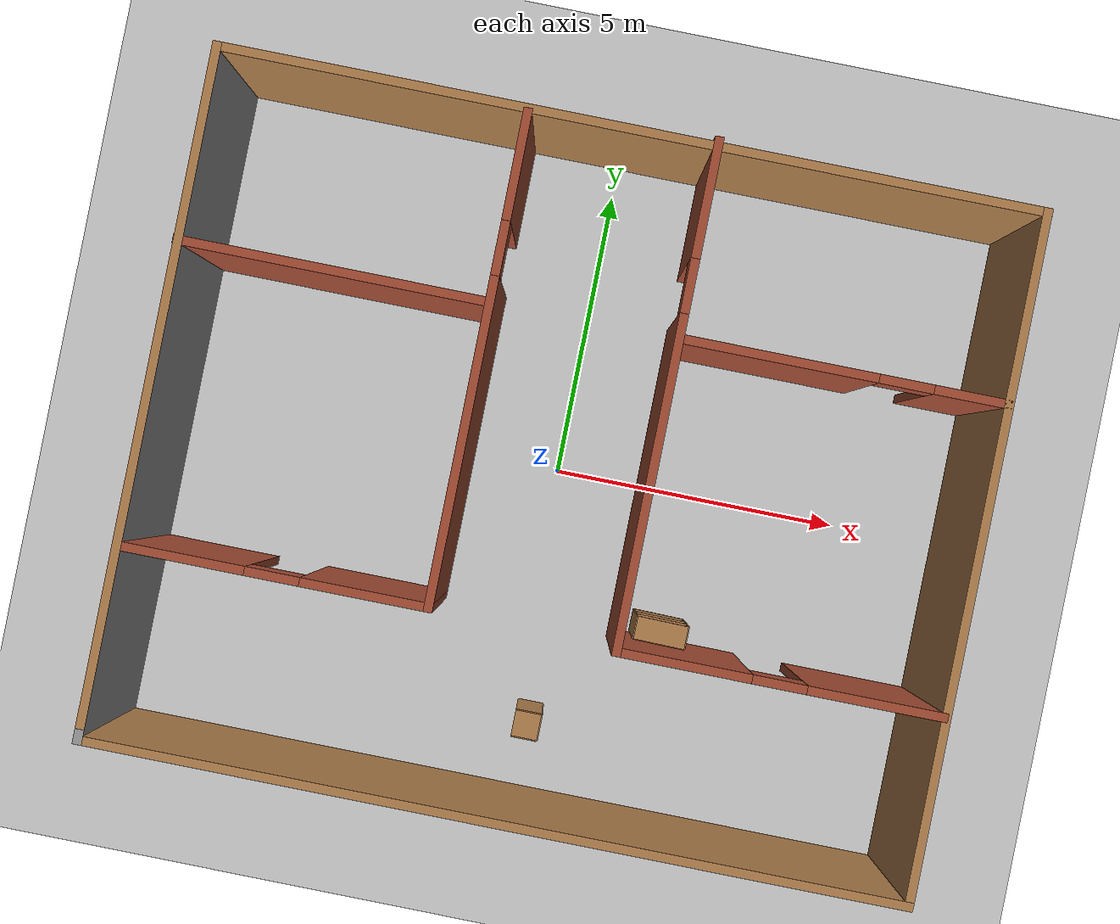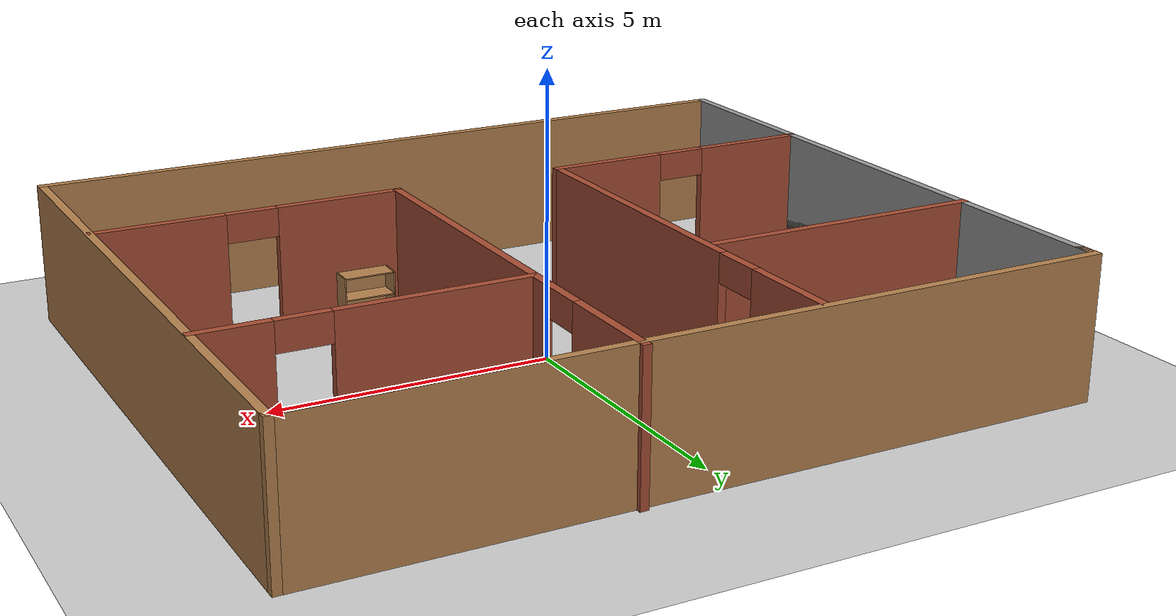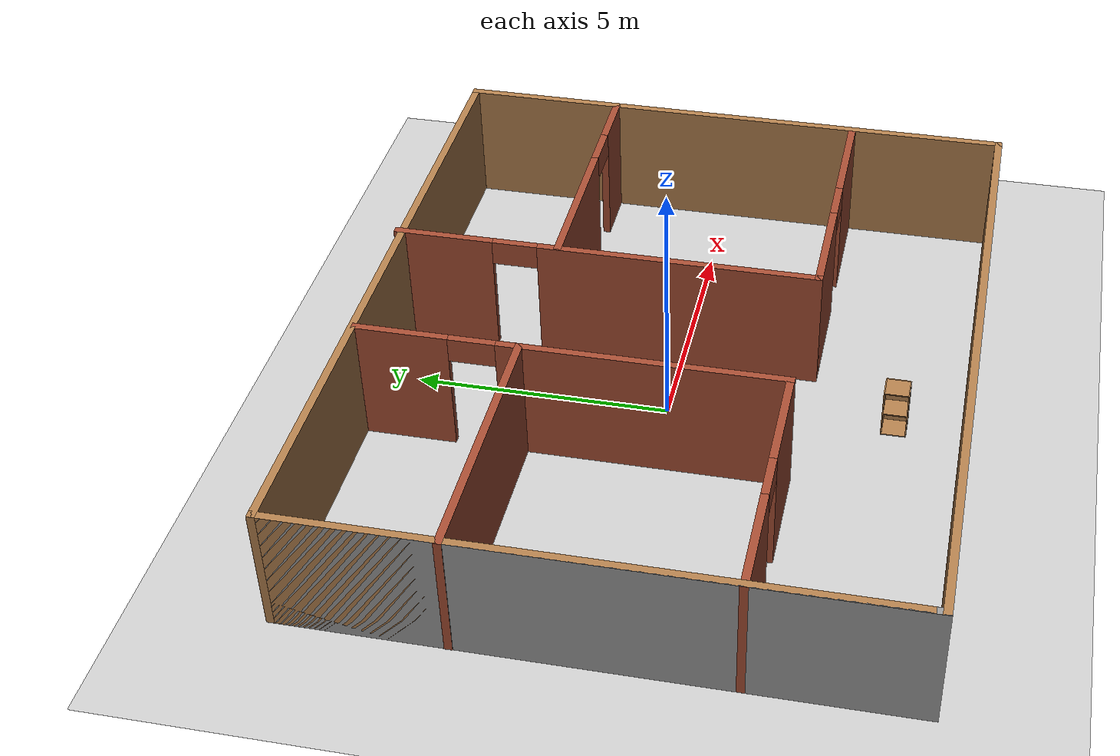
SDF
<sdf version="1.7">
 <world name="default">
  <light name="sun" type="directional">
   <pose>0 0 10 0 -0 0</pose>
   <diffuse>0.8 0.8 0.8 1</diffuse>
   <specular>0.2 0.2 0.2 1</specular>
   <attenuation>
    <range>1000</range>
    <constant>0.9</constant>
    <linear>0.01</linear>
    <quadratic>0.001</quadratic>
   </attenuation>
   <direction>-0.5 0.1 -0.9</direction>
   <spot><inner_angle>0</inner_angle><outer_angle>0</outer_angle><falloff>0</falloff></spot>
  </light>
  <model name="ground_plane">
   <static>1</static>
   <link name="link">
    <collision name="collision">
     <geometry><plane><normal>0 0 1</normal><size>100 100</size></plane></geometry>
     <surface>
      <contact><collide_bitmask>65535</collide_bitmask></contact>
      <friction><ode><mu>100</mu><mu2>50</mu2></ode></friction>
     </surface>
    </collision>
    <visual name="visual">
     <cast_shadows>0</cast_shadows>
     <geometry><plane><normal>0 0 1</normal><size>100 100</size></plane></geometry>
     <material>
      <script><uri>file://media/materials/scripts/gazebo.material</uri><name>Gazebo/Grey</name></script>
     </material>
    </visual>
   </link>
  </model>
  <gravity>0 0 -9.8</gravity>
  <magnetic_field>6e-06 2.3e-05 -4.2e-05</magnetic_field>
  <atmosphere type="adiabatic"/>
  <physics type="ode">
   <max_step_size>0.001</max_step_size>
   <real_time_factor>1</real_time_factor>
   <real_time_update_rate>1000</real_time_update_rate>
  </physics>
  <scene><ambient>0.4 0.4 0.4 1</ambient><background>0.7 0.7 0.7 1</background><shadows>1</shadows></scene>
  <audio><device>default</device></audio>
  <spherical_coordinates>
   <surface_model>EARTH_WGS84</surface_model>
   <latitude_deg>0</latitude_deg>
   <longitude_deg>0</longitude_deg>
   <elevation>0</elevation>
   <heading_deg>0</heading_deg>
  </spherical_coordinates>
  <model name="my_florr">
   <pose>0.106245 -0.028154 0 0 -0 0</pose>
   <link name="Wall_0">
    <collision name="Wall_0_Collision">
     <geometry><box><size>11.25 0.15 2.5</size></box></geometry>
     <pose>0 0 1.25 0 -0 0</pose>
    </collision>
    <visual name="Wall_0_Visual">
     <pose>0 0 1.25 0 -0 0</pose>
     <geometry><box><size>11.25 0.15 2.5</size></box></geometry>
     <material>
      <script><uri>file://media/materials/scripts/gazebo.material</uri><name>Gazebo/Wood</name></script>
      <ambient>1 1 1 1</ambient>
     </material>
     <meta><layer>0</layer></meta>
    </visual>
    <pose>-6.79479 0.08263 0 0 -0 -1.5708</pose>
   </link>
   <link name="Wall_12">
    <pose>-1.69508 1.51528 0 0 -0 -1.5708</pose>
    <visual name="Wall_12_Visual_0">
     <pose>-3.20481 0 1.25 0 -0 0</pose>
     <geometry><box><size>1.84037 0.15 2.5</size></box></geometry>
     <material>
      <script><uri>file://media/materials/scripts/gazebo.material</uri><name>Gazebo/Bricks</name></script>
      <ambient>1 1 1 1</ambient>
     </material>
     <meta><layer>0</layer></meta>
    </visual>
    <collision name="Wall_12_Collision_0">
     <geometry><box><size>1.84037 0.15 2.5</size></box></geometry>
     <pose>-3.20481 0 1.25 0 -0 0</pose>
    </collision>
    <visual name="Wall_12_Visual_1">
     <pose>1.37018 0 1.25 0 -0 0</pose>
     <geometry><box><size>5.50963 0.15 2.5</size></box></geometry>
     <material>
      <script><uri>file://media/materials/scripts/gazebo.material</uri><name>Gazebo/Bricks</name></script>
      <ambient>1 1 1 1</ambient>
     </material>
     <meta><layer>0</layer></meta>
    </visual>
    <collision name="Wall_12_Collision_1">
     <geometry><box><size>5.50963 0.15 2.5</size></box></geometry>
     <pose>1.37018 0 1.25 0 -0 0</pose>
    </collision>
    <visual name="Wall_12_Visual_2">
     <pose>-1.83463 0 2.25 0 -0 0</pose>
     <geometry><box><size>0.9 0.15 0.5</size></box></geometry>
     <material>
      <script><uri>file://media/materials/scripts/gazebo.material</uri><name>Gazebo/Bricks</name></script>
      <ambient>1 1 1 1</ambient>
     </material>
     <meta><layer>0</layer></meta>
    </visual>
    <collision name="Wall_12_Collision_2">
     <geometry><box><size>0.9 0.15 0.5</size></box></geometry>
     <pose>-1.83463 0 2.25 0 -0 0</pose>
    </collision>
   </link>
   <link name="Wall_13">
    <pose>-4.24507 -2.53472 0 0 -0 3.14159</pose>
    <visual name="Wall_13_Visual_0">
     <pose>-1.5298 0 1.25 0 -0 0</pose>
     <geometry><box><size>2.19039 0.15 2.5</size></box></geometry>
     <material>
      <script><uri>file://media/materials/scripts/gazebo.material</uri><name>Gazebo/Bricks</name></script>
      <ambient>1 1 1 1</ambient>
     </material>
     <meta><layer>0</layer></meta>
    </visual>
    <collision name="Wall_13_Collision_0">
     <geometry><box><size>2.19039 0.15 2.5</size></box></geometry>
     <pose>-1.5298 0 1.25 0 -0 0</pose>
    </collision>
    <visual name="Wall_13_Visual_1">
     <pose>1.5452 0 1.25 0 -0 0</pose>
     <geometry><box><size>2.15961 0.15 2.5</size></box></geometry>
     <material>
      <script><uri>file://media/materials/scripts/gazebo.material</uri><name>Gazebo/Bricks</name></script>
      <ambient>1 1 1 1</ambient>
     </material>
     <meta><layer>0</layer></meta>
    </visual>
    <collision name="Wall_13_Collision_1">
     <geometry><box><size>2.15961 0.15 2.5</size></box></geometry>
     <pose>1.5452 0 1.25 0 -0 0</pose>
    </collision>
    <visual name="Wall_13_Visual_2">
     <pose>0.015391 0 2.25 0 -0 0</pose>
     <geometry><box><size>0.9 0.15 0.5</size></box></geometry>
     <material>
      <script><uri>file://media/materials/scripts/gazebo.material</uri><name>Gazebo/Bricks</name></script>
      <ambient>1 1 1 1</ambient>
     </material>
     <meta><layer>0</layer></meta>
    </visual>
    <collision name="Wall_13_Collision_2">
     <geometry><box><size>0.9 0.15 0.5</size></box></geometry>
     <pose>0.015391 0 2.25 0 -0 0</pose>
    </collision>
   </link>
   <link name="Wall_15">
    <collision name="Wall_15_Collision">
     <geometry><box><size>5.25 0.15 2.5</size></box></geometry>
     <pose>0 0 1.25 0 -0 0</pose>
    </collision>
    <visual name="Wall_15_Visual">
     <pose>0 0 1.25 0 -0 0</pose>
     <geometry><box><size>5.25 0.15 2.5</size></box></geometry>
     <material>
      <script><uri>file://media/materials/scripts/gazebo.material</uri><name>Gazebo/Bricks</name></script>
      <ambient>1 1 1 1</ambient>
     </material>
     <meta><layer>0</layer></meta>
    </visual>
    <pose>-4.25521 2.4627 0 0 -0 0</pose>
   </link>
   <link name="Wall_17">
    <pose>1.40751 1.54237 0 0 -0 -1.5708</pose>
    <visual name="Wall_17_Visual_0">
     <pose>-3.25377 0 1.25 0 -0 0</pose>
     <geometry><box><size>1.99246 0.15 2.5</size></box></geometry>
     <material>
      <script><uri>file://media/materials/scripts/gazebo.material</uri><name>Gazebo/Bricks</name></script>
      <ambient>1 1 1 1</ambient>
     </material>
     <meta><layer>0</layer></meta>
    </visual>
    <collision name="Wall_17_Collision_0">
     <geometry><box><size>1.99246 0.15 2.5</size></box></geometry>
     <pose>-3.25377 0 1.25 0 -0 0</pose>
    </collision>
    <visual name="Wall_17_Visual_1">
     <pose>1.44623 0 1.25 0 -0 0</pose>
     <geometry><box><size>5.60754 0.15 2.5</size></box></geometry>
     <material>
      <script><uri>file://media/materials/scripts/gazebo.material</uri><name>Gazebo/Bricks</name></script>
      <ambient>1 1 1 1</ambient>
     </material>
     <meta><layer>0</layer></meta>
    </visual>
    <collision name="Wall_17_Collision_1">
     <geometry><box><size>5.60754 0.15 2.5</size></box></geometry>
     <pose>1.44623 0 1.25 0 -0 0</pose>
    </collision>
    <visual name="Wall_17_Visual_2">
     <pose>-1.80754 0 2.25 0 -0 0</pose>
     <geometry><box><size>0.9 0.15 0.5</size></box></geometry>
     <material>
      <script><uri>file://media/materials/scripts/gazebo.material</uri><name>Gazebo/Bricks</name></script>
      <ambient>1 1 1 1</ambient>
     </material>
     <meta><layer>0</layer></meta>
    </visual>
    <collision name="Wall_17_Collision_2">
     <geometry><box><size>0.9 0.15 0.5</size></box></geometry>
     <pose>-1.80754 0 2.25 0 -0 0</pose>
    </collision>
   </link>
   <link name="Wall_18">
    <pose>4.08251 -2.63263 0 0 -0 0</pose>
    <visual name="Wall_18_Visual_0">
     <pose>-1.60284 0 1.25 0 -0 0</pose>
     <geometry><box><size>2.29433 0.15 2.5</size></box></geometry>
     <material>
      <script><uri>file://media/materials/scripts/gazebo.material</uri><name>Gazebo/Bricks</name></script>
      <ambient>1 1 1 1</ambient>
     </material>
     <meta><layer>0</layer></meta>
    </visual>
    <collision name="Wall_18_Collision_0">
     <geometry><box><size>2.29433 0.15 2.5</size></box></geometry>
     <pose>-1.60284 0 1.25 0 -0 0</pose>
    </collision>
    <visual name="Wall_18_Visual_1">
     <pose>1.59716 0 1.25 0 -0 0</pose>
     <geometry><box><size>2.30567 0.15 2.5</size></box></geometry>
     <material>
      <script><uri>file://media/materials/scripts/gazebo.material</uri><name>Gazebo/Bricks</name></script>
      <ambient>1 1 1 1</ambient>
     </material>
     <meta><layer>0</layer></meta>
    </visual>
    <collision name="Wall_18_Collision_1">
     <geometry><box><size>2.30567 0.15 2.5</size></box></geometry>
     <pose>1.59716 0 1.25 0 -0 0</pose>
    </collision>
    <visual name="Wall_18_Visual_2">
     <pose>-0.005671 0 2.25 0 -0 0</pose>
     <geometry><box><size>0.9 0.15 0.5</size></box></geometry>
     <material>
      <script><uri>file://media/materials/scripts/gazebo.material</uri><name>Gazebo/Bricks</name></script>
      <ambient>1 1 1 1</ambient>
     </material>
     <meta><layer>0</layer></meta>
    </visual>
    <collision name="Wall_18_Collision_2">
     <geometry><box><size>0.9 0.15 0.5</size></box></geometry>
     <pose>-0.005671 0 2.25 0 -0 0</pose>
    </collision>
   </link>
   <link name="Wall_2">
    <collision name="Wall_2_Collision">
     <geometry><box><size>11.5 0.15 2.5</size></box></geometry>
     <pose>0 0 1.25 0 -0 0</pose>
    </collision>
    <visual name="Wall_2_Visual">
     <pose>0 0 1.25 0 -0 0</pose>
     <geometry><box><size>11.5 0.15 2.5</size></box></geometry>
     <material>
      <script><uri>file://media/materials/scripts/gazebo.material</uri><name>Gazebo/Grey</name></script>
      <ambient>1 1 1 1</ambient>
     </material>
     <meta><layer>0</layer></meta>
    </visual>
    <pose>-6.79479 -0.04237 0 0 -0 -1.5708</pose>
   </link>
   <link name="Wall_20">
    <pose>4.11293 2.49311 0 0 -0 0</pose>
    <visual name="Wall_20_Visual_0">
     <pose>-1.09203 0 1.25 0 -0 0</pose>
     <geometry><box><size>3.31594 0.15 2.5</size></box></geometry>
     <material>
      <script><uri>file://media/materials/scripts/gazebo.material</uri><name>Gazebo/Bricks</name></script>
      <ambient>1 1 1 1</ambient>
     </material>
     <meta><layer>0</layer></meta>
    </visual>
    <collision name="Wall_20_Collision_0">
     <geometry><box><size>3.31594 0.15 2.5</size></box></geometry>
     <pose>-1.09203 0 1.25 0 -0 0</pose>
    </collision>
    <visual name="Wall_20_Visual_1">
     <pose>2.10797 0 1.25 0 -0 0</pose>
     <geometry><box><size>1.28406 0.15 2.5</size></box></geometry>
     <material>
      <script><uri>file://media/materials/scripts/gazebo.material</uri><name>Gazebo/Bricks</name></script>
      <ambient>1 1 1 1</ambient>
     </material>
     <meta><layer>0</layer></meta>
    </visual>
    <collision name="Wall_20_Collision_1">
     <geometry><box><size>1.28406 0.15 2.5</size></box></geometry>
     <pose>2.10797 0 1.25 0 -0 0</pose>
    </collision>
    <visual name="Wall_20_Visual_2">
     <pose>1.01594 0 2.25 0 -0 0</pose>
     <geometry><box><size>0.9 0.15 0.5</size></box></geometry>
     <material>
      <script><uri>file://media/materials/scripts/gazebo.material</uri><name>Gazebo/Bricks</name></script>
      <ambient>1 1 1 1</ambient>
     </material>
     <meta><layer>0</layer></meta>
    </visual>
    <collision name="Wall_20_Collision_2">
     <geometry><box><size>0.9 0.15 0.5</size></box></geometry>
     <pose>1.01594 0 2.25 0 -0 0</pose>
    </collision>
   </link>
   <link name="Wall_3">
    <collision name="Wall_3_Collision">
     <geometry><box><size>13.75 0.15 2.5</size></box></geometry>
     <pose>0 0 1.25 0 -0 0</pose>
    </collision>
    <visual name="Wall_3_Visual">
     <pose>0 0 1.25 0 -0 0</pose>
     <geometry><box><size>13.75 0.15 2.5</size></box></geometry>
     <material>
      <script><uri>file://media/materials/scripts/gazebo.material</uri><name>Gazebo/Wood</name></script>
      <ambient>1 1 1 1</ambient>
     </material>
     <meta><layer>0</layer></meta>
    </visual>
    <pose>0.005214 -5.71737 0 0 -0 0</pose>
   </link>
   <link name="Wall_4">
    <collision name="Wall_4_Collision">
     <geometry><box><size>11.5 0.15 2.5</size></box></geometry>
     <pose>0 0 1.25 0 -0 0</pose>
    </collision>
    <visual name="Wall_4_Visual">
     <pose>0 0 1.25 0 -0 0</pose>
     <geometry><box><size>11.5 0.15 2.5</size></box></geometry>
     <material>
      <script><uri>file://media/materials/scripts/gazebo.material</uri><name>Gazebo/Wood</name></script>
      <ambient>1 1 1 1</ambient>
     </material>
     <meta><layer>0</layer></meta>
    </visual>
    <pose>6.80521 -0.04237 0 0 -0 1.5708</pose>
   </link>
   <link name="Wall_5">
    <collision name="Wall_5_Collision">
     <geometry><box><size>13.75 0.15 2.5</size></box></geometry>
     <pose>0 0 1.25 0 -0 0</pose>
    </collision>
    <visual name="Wall_5_Visual">
     <pose>0 0 1.25 0 -0 0</pose>
     <geometry><box><size>13.75 0.15 2.5</size></box></geometry>
     <material>
      <script><uri>file://media/materials/scripts/gazebo.material</uri><name>Gazebo/Wood</name></script>
      <ambient>1 1 1 1</ambient>
     </material>
     <meta><layer>0</layer></meta>
    </visual>
    <pose>0.005214 5.63263 0 0 -0 3.14159</pose>
   </link>
   <static>1</static>
  </model>
  <model name="bookshelf">
   <static>1</static>
   <link name="link">
    <inertial><mass>1</mass></inertial>
    <collision name="back">
     <pose>0 0.005 0.6 0 -0 0</pose>
     <geometry><box><size>0.9 0.01 1.2</size></box></geometry>
    </collision>
    <visual name="visual1">
     <pose>0 0.005 0.6 0 -0 0</pose>
     <geometry><box><size>0.9 0.01 1.2</size></box></geometry>
     <material>
      <script><uri>file://media/materials/scripts/gazebo.material</uri><name>Gazebo/Wood</name></script>
     </material>
    </visual>
    <collision name="left_side">
     <pose>0.45 -0.195 0.6 0 -0 0</pose>
     <geometry><box><size>0.02 0.4 1.2</size></box></geometry>
    </collision>
    <visual name="visual2">
     <pose>0.45 -0.195 0.6 0 -0 0</pose>
     <geometry><box><size>0.02 0.4 1.2</size></box></geometry>
     <material>
      <script><uri>file://media/materials/scripts/gazebo.material</uri><name>Gazebo/Wood</name></script>
     </material>
    </visual>
    <collision name="right_side">
     <pose>-0.45 -0.195 0.6 0 -0 0</pose>
     <geometry><box><size>0.02 0.4 1.2</size></box></geometry>
    </collision>
    <visual name="visual3">
     <pose>-0.45 -0.195 0.6 0 -0 0</pose>
     <geometry><box><size>0.02 0.4 1.2</size></box></geometry>
     <material>
      <script><uri>file://media/materials/scripts/gazebo.material</uri><name>Gazebo/Wood</name></script>
     </material>
    </visual>
    <collision name="bottom">
     <pose>0 -0.195 0.03 0 -0 0</pose>
     <geometry><box><size>0.88 0.4 0.06</size></box></geometry>
    </collision>
    <visual name="visual4">
     <pose>0 -0.195 0.03 0 -0 0</pose>
     <geometry><box><size>0.88 0.4 0.06</size></box></geometry>
     <material>
      <script><uri>file://media/materials/scripts/gazebo.material</uri><name>Gazebo/Wood</name></script>
     </material>
    </visual>
    <collision name="top">
     <pose>0 -0.195 1.19 0 -0 0</pose>
     <geometry><box><size>0.88 0.4 0.02</size></box></geometry>
    </collision>
    <visual name="visual5">
     <pose>0 -0.195 1.19 0 -0 0</pose>
     <geometry><box><size>0.88 0.4 0.02</size></box></geometry>
     <material>
      <script><uri>file://media/materials/scripts/gazebo.material</uri><name>Gazebo/Wood</name></script>
     </material>
    </visual>
    <collision name="low_shelf">
     <pose>0 -0.195 0.43 0 -0 0</pose>
     <geometry><box><size>0.88 0.4 0.02</size></box></geometry>
    </collision>
    <visual name="visual6">
     <pose>0 -0.195 0.43 0 -0 0</pose>
     <geometry><box><size>0.88 0.4 0.02</size></box></geometry>
     <material>
      <script><uri>file://media/materials/scripts/gazebo.material</uri><name>Gazebo/Wood</name></script>
     </material>
    </visual>
    <collision name="high_shelf">
     <pose>0 -0.195 0.8 0 -0 0</pose>
     <geometry><box><size>0.88 0.4 0.02</size></box></geometry>
    </collision>
    <visual name="visual7">
     <pose>0 -0.195 0.8 0 -0 0</pose>
     <geometry><box><size>0.88 0.4 0.02</size></box></geometry>
     <material>
      <script><uri>file://media/materials/scripts/gazebo.material</uri><name>Gazebo/Wood</name></script>
     </material>
    </visual>
   </link>
   <pose>2.27791 -2.5547 0 0 -0 3.12741</pose>
  </model>
  <model name="cabinet">
   <static>1</static>
   <link name="cabinet_bottom_plate">
    <inertial>
     <pose>0 0 -1 0 -0 0</pose>
     <inertia><ixx>2.05</ixx><ixy>0</ixy><ixz>0</ixz><iyy>2.05</iyy><iyz>0</iyz><izz>2.05</izz></inertia>
     <mass>25</mass>
    </inertial>
    <collision name="cabinet_bottom_plate_geom">
     <pose>0 0 0.01 0 -0 0</pose>
     <geometry><box><size>0.45 0.45 0.02</size></box></geometry>
    </collision>
    <visual name="cabinet_bottom_plate_geom_visual">
     <pose>0 0 0.01 0 -0 0</pose>
     <geometry><box><size>0.45 0.45 0.02</size></box></geometry>
     <material>
      <script><uri>file://media/materials/scripts/gazebo.material</uri><name>Gazebo/Wood</name></script>
     </material>
    </visual>
    <collision name="cabinet_bottom_plate_geom_cabinet_back_plate">
     <pose>0.235 0 0.51 0 -0 0</pose>
     <geometry><box><size>0.02 0.45 1.02</size></box></geometry>
    </collision>
    <visual name="cabinet_bottom_plate_geom_cabinet_back_plate_visual">
     <pose>0.235 0 0.51 0 -0 0</pose>
     <geometry><box><size>0.02 0.45 1.02</size></box></geometry>
     <material>
      <script><uri>file://media/materials/scripts/gazebo.material</uri><name>Gazebo/Wood</name></script>
     </material>
    </visual>
    <collision name="cabinet_bottom_plate_geom_cabinet_left_plate">
     <pose>0 0.235 0.51 0 -0 0</pose>
     <geometry><box><size>0.45 0.02 1.02</size></box></geometry>
    </collision>
    <visual name="cabinet_bottom_plate_geom_cabinet_left_plate_visual">
     <pose>0 0.235 0.51 0 -0 0</pose>
     <geometry><box><size>0.45 0.02 1.02</size></box></geometry>
     <material>
      <script><uri>file://media/materials/scripts/gazebo.material</uri><name>Gazebo/Wood</name></script>
     </material>
    </visual>
    <collision name="cabinet_bottom_plate_geom_cabinet_middle_plate">
     <pose>0 0 0.51 0 -0 0</pose>
     <geometry><box><size>0.45 0.45 0.02</size></box></geometry>
    </collision>
    <visual name="cabinet_bottom_plate_geom_cabinet_middle_plate_visual">
     <pose>0 0 0.51 0 -0 0</pose>
     <geometry><box><size>0.45 0.45 0.02</size></box></geometry>
     <material>
      <script><uri>file://media/materials/scripts/gazebo.material</uri><name>Gazebo/Wood</name></script>
     </material>
    </visual>
    <collision name="cabinet_bottom_plate_geom_cabinet_right_plate">
     <pose>0 -0.235 0.51 0 -0 0</pose>
     <geometry><box><size>0.45 0.02 1.02</size></box></geometry>
    </collision>
    <visual name="cabinet_bottom_plate_geom_cabinet_right_plate_visual">
     <pose>0 -0.235 0.51 0 -0 0</pose>
     <geometry><box><size>0.45 0.02 1.02</size></box></geometry>
     <material>
      <script><uri>file://media/materials/scripts/gazebo.material</uri><name>Gazebo/Wood</name></script>
     </material>
    </visual>
    <collision name="cabinet_bottom_plate_geom_cabinet_top_plate">
     <pose>0 0 1.01 0 -0 0</pose>
     <geometry><box><size>0.45 0.45 0.02</size></box></geometry>
    </collision>
    <visual name="cabinet_bottom_plate_geom_cabinet_top_plate_visual">
     <pose>0 0 1.01 0 -0 0</pose>
     <geometry><box><size>0.45 0.45 0.02</size></box></geometry>
     <material>
      <script><uri>file://media/materials/scripts/gazebo.material</uri><name>Gazebo/Wood</name></script>
     </material>
    </visual>
   </link>
   <pose>0.335843 -4.39013 0 0 -0 0</pose>
  </model>
 </world>
</sdf>
